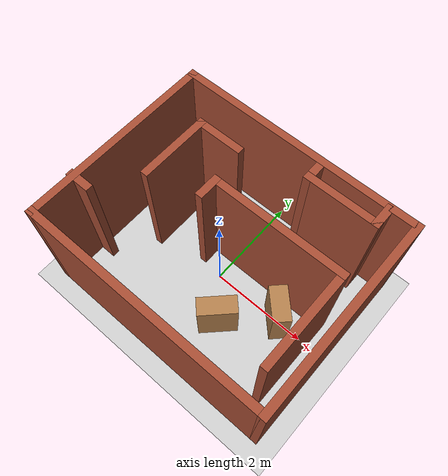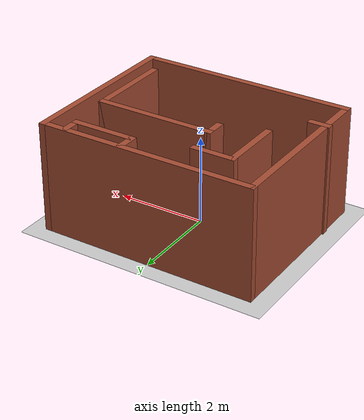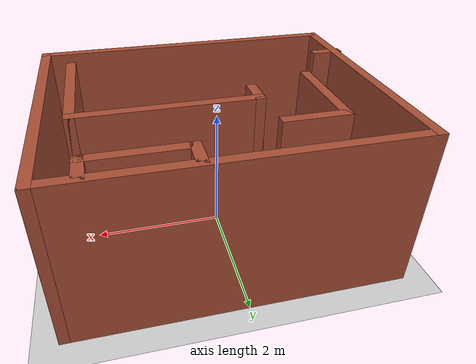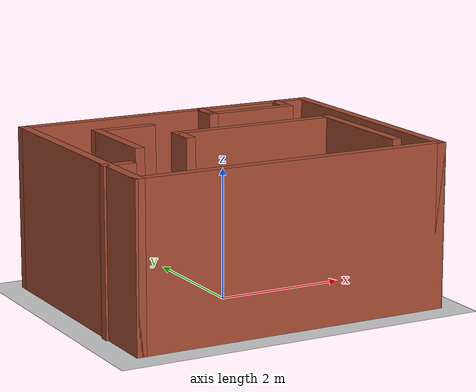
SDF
<sdf version="1.7">
 <world name="default">
  <light name="sun" type="directional">
   <pose>0 0 10 0 -0 0</pose>
   <diffuse>0.8 0.8 0.8 1</diffuse>
   <specular>0.2 0.2 0.2 1</specular>
   <attenuation>
    <range>1000</range>
    <constant>0.9</constant>
    <linear>0.01</linear>
    <quadratic>0.001</quadratic>
   </attenuation>
   <direction>-0.5 0.1 -0.9</direction>
   <spot><inner_angle>0</inner_angle><outer_angle>0</outer_angle><falloff>0</falloff></spot>
  </light>
  <model name="ground_plane">
   <static>1</static>
   <link name="link">
    <collision name="collision">
     <geometry><plane><normal>0 0 1</normal><size>100 100</size></plane></geometry>
     <surface>
      <contact><collide_bitmask>65535</collide_bitmask></contact>
      <friction><ode><mu>100</mu><mu2>50</mu2></ode></friction>
     </surface>
    </collision>
    <visual name="visual">
     <cast_shadows>0</cast_shadows>
     <geometry><plane><normal>0 0 1</normal><size>100 100</size></plane></geometry>
     <material>
      <script><uri>file://media/materials/scripts/gazebo.material</uri><name>Gazebo/Grey</name></script>
     </material>
    </visual>
   </link>
  </model>
  <gravity>0 0 -9.8</gravity>
  <magnetic_field>6e-06 2.3e-05 -4.2e-05</magnetic_field>
  <atmosphere type="adiabatic"/>
  <physics type="ode">
   <max_step_size>0.001</max_step_size>
   <real_time_factor>1</real_time_factor>
   <real_time_update_rate>1000</real_time_update_rate>
  </physics>
  <scene><ambient>0.4 0.4 0.4 1</ambient><background>0.7 0.7 0.7 1</background><shadows>1</shadows></scene>
  <spherical_coordinates>
   <surface_model>EARTH_WGS84</surface_model>
   <latitude_deg>0</latitude_deg>
   <longitude_deg>0</longitude_deg>
   <elevation>0</elevation>
   <heading_deg>0</heading_deg>
  </spherical_coordinates>
  <model name="world4">
   <pose>0.074225 1.73403 0 0 -0 0</pose>
   <link name="Wall_33">
    <collision name="Wall_33_Collision">
     <geometry><box><size>5 0.15 2.5</size></box></geometry>
     <pose>0 0 1.25 0 -0 0</pose>
    </collision>
    <visual name="Wall_33_Visual">
     <pose>0 0 1.25 0 -0 0</pose>
     <geometry><box><size>5 0.15 2.5</size></box></geometry>
     <material>
      <script><uri>file://media/materials/scripts/gazebo.material</uri><name>Gazebo/Bricks</name></script>
      <ambient>1 1 1 1</ambient>
     </material>
     <meta><layer>0</layer></meta>
    </visual>
    <pose>0.01749 -3.655 0 0 -0 0</pose>
   </link>
   <link name="Wall_34">
    <collision name="Wall_34_Collision">
     <geometry><box><size>4 0.15 2.5</size></box></geometry>
     <pose>0 0 1.25 0 -0 0</pose>
    </collision>
    <visual name="Wall_34_Visual">
     <pose>0 0 1.25 0 -0 0</pose>
     <geometry><box><size>4 0.15 2.5</size></box></geometry>
     <material>
      <script><uri>file://media/materials/scripts/gazebo.material</uri><name>Gazebo/Bricks</name></script>
      <ambient>1 1 1 1</ambient>
     </material>
     <meta><layer>0</layer></meta>
    </visual>
    <pose>2.44249 -1.73 0 0 -0 1.5708</pose>
   </link>
   <link name="Wall_35">
    <collision name="Wall_35_Collision">
     <geometry><box><size>5 0.15 2.5</size></box></geometry>
     <pose>0 0 1.25 0 -0 0</pose>
    </collision>
    <visual name="Wall_35_Visual">
     <pose>0 0 1.25 0 -0 0</pose>
     <geometry><box><size>5 0.15 2.5</size></box></geometry>
     <material>
      <script><uri>file://media/materials/scripts/gazebo.material</uri><name>Gazebo/Bricks</name></script>
      <ambient>1 1 1 1</ambient>
     </material>
     <meta><layer>0</layer></meta>
    </visual>
    <pose>0.01749 0.195001 0 0 -0 3.14159</pose>
   </link>
   <link name="Wall_36">
    <collision name="Wall_36_Collision">
     <geometry><box><size>4 0.15 2.5</size></box></geometry>
     <pose>0 0 1.25 0 -0 0</pose>
    </collision>
    <visual name="Wall_36_Visual">
     <pose>0 0 1.25 0 -0 0</pose>
     <geometry><box><size>4 0.15 2.5</size></box></geometry>
     <material>
      <script><uri>file://media/materials/scripts/gazebo.material</uri><name>Gazebo/Bricks</name></script>
      <ambient>1 1 1 1</ambient>
     </material>
     <meta><layer>0</layer></meta>
    </visual>
    <pose>-2.40751 -1.73 0 0 -0 -1.5708</pose>
   </link>
   <link name="Wall_43">
    <collision name="Wall_43_Collision">
     <geometry><box><size>0.5 0.15 2.5</size></box></geometry>
     <pose>0 0 1.25 0 -0 0</pose>
    </collision>
    <visual name="Wall_43_Visual">
     <pose>0 0 1.25 0 -0 0</pose>
     <geometry><box><size>0.5 0.15 2.5</size></box></geometry>
     <material>
      <script><uri>file://media/materials/scripts/gazebo.material</uri><name>Gazebo/Bricks</name></script>
      <ambient>1 1 1 1</ambient>
     </material>
     <meta><layer>0</layer></meta>
    </visual>
    <pose>1.91254 -0.017165 0 0 -0 -1.5708</pose>
   </link>
   <link name="Wall_44">
    <collision name="Wall_44_Collision">
     <geometry><box><size>1.5 0.15 2.5</size></box></geometry>
     <pose>0 0 1.25 0 -0 0</pose>
    </collision>
    <visual name="Wall_44_Visual">
     <pose>0 0 1.25 0 -0 0</pose>
     <geometry><box><size>1.5 0.15 2.5</size></box></geometry>
     <material>
      <script><uri>file://media/materials/scripts/gazebo.material</uri><name>Gazebo/Bricks</name></script>
      <ambient>1 1 1 1</ambient>
     </material>
     <meta><layer>0</layer></meta>
    </visual>
    <pose>1.23754 -0.192166 0 0 -0 3.14159</pose>
   </link>
   <link name="Wall_45">
    <collision name="Wall_45_Collision">
     <geometry><box><size>0.5 0.15 2.5</size></box></geometry>
     <pose>0 0 1.25 0 -0 0</pose>
    </collision>
    <visual name="Wall_45_Visual">
     <pose>0 0 1.25 0 -0 0</pose>
     <geometry><box><size>0.5 0.15 2.5</size></box></geometry>
     <material>
      <script><uri>file://media/materials/scripts/gazebo.material</uri><name>Gazebo/Bricks</name></script>
      <ambient>1 1 1 1</ambient>
     </material>
     <meta><layer>0</layer></meta>
    </visual>
    <pose>0.562535 -0.017165 0 0 -0 1.5708</pose>
   </link>
   <link name="Wall_47">
    <collision name="Wall_47_Collision">
     <geometry><box><size>0.5 0.15 2.5</size></box></geometry>
     <pose>0 0 1.25 0 -0 0</pose>
    </collision>
    <visual name="Wall_47_Visual">
     <pose>0 0 1.25 0 -0 0</pose>
     <geometry><box><size>0.5 0.15 2.5</size></box></geometry>
     <material>
      <script><uri>file://media/materials/scripts/gazebo.material</uri><name>Gazebo/Bricks</name></script>
      <ambient>1 1 1 1</ambient>
     </material>
     <meta><layer>0</layer></meta>
    </visual>
    <pose>-2.26749 -2.74552 0 0 -0 0</pose>
   </link>
   <link name="Wall_49">
    <collision name="Wall_49_Collision">
     <geometry><box><size>1 0.15 2.5</size></box></geometry>
     <pose>0 0 1.25 0 -0 0</pose>
    </collision>
    <visual name="Wall_49_Visual">
     <pose>0 0 1.25 0 -0 0</pose>
     <geometry><box><size>1 0.15 2.5</size></box></geometry>
     <material>
      <script><uri>file://media/materials/scripts/gazebo.material</uri><name>Gazebo/Bricks</name></script>
      <ambient>1 1 1 1</ambient>
     </material>
     <meta><layer>0</layer></meta>
    </visual>
    <pose>-1.11848 -0.541768 0 0 -0 3.14159</pose>
   </link>
   <link name="Wall_50">
    <collision name="Wall_50_Collision">
     <geometry><box><size>1.5 0.15 2.5</size></box></geometry>
     <pose>0 0 1.25 0 -0 0</pose>
    </collision>
    <visual name="Wall_50_Visual">
     <pose>0 0 1.25 0 -0 0</pose>
     <geometry><box><size>1.5 0.15 2.5</size></box></geometry>
     <material>
      <script><uri>file://media/materials/scripts/gazebo.material</uri><name>Gazebo/Bricks</name></script>
      <ambient>1 1 1 1</ambient>
     </material>
     <meta><layer>0</layer></meta>
    </visual>
    <pose>-1.54348 -1.21677 0 0 -0 -1.5708</pose>
   </link>
   <link name="Wall_52">
    <collision name="Wall_52_Collision">
     <geometry><box><size>0.5 0.15 2.5</size></box></geometry>
     <pose>0 0 1.25 0 -0 0</pose>
    </collision>
    <visual name="Wall_52_Visual">
     <pose>0 0 1.25 0 -0 0</pose>
     <geometry><box><size>0.5 0.15 2.5</size></box></geometry>
     <material>
      <script><uri>file://media/materials/scripts/gazebo.material</uri><name>Gazebo/Bricks</name></script>
      <ambient>1 1 1 1</ambient>
     </material>
     <meta><layer>0</layer></meta>
    </visual>
    <pose>-0.571053 -1.43366 0 0 -0 1.5708</pose>
   </link>
   <link name="Wall_53">
    <collision name="Wall_53_Collision">
     <geometry><box><size>2.75 0.15 2.5</size></box></geometry>
     <pose>0 0 1.25 0 -0 0</pose>
    </collision>
    <visual name="Wall_53_Visual">
     <pose>0 0 1.25 0 -0 0</pose>
     <geometry><box><size>2.75 0.15 2.5</size></box></geometry>
     <material>
      <script><uri>file://media/materials/scripts/gazebo.material</uri><name>Gazebo/Bricks</name></script>
      <ambient>1 1 1 1</ambient>
     </material>
     <meta><layer>0</layer></meta>
    </visual>
    <pose>0.728947 -1.25866 0 0 -0 0</pose>
   </link>
   <link name="Wall_54">
    <collision name="Wall_54_Collision">
     <geometry><box><size>2 0.15 2.5</size></box></geometry>
     <pose>0 0 1.25 0 -0 0</pose>
    </collision>
    <visual name="Wall_54_Visual">
     <pose>0 0 1.25 0 -0 0</pose>
     <geometry><box><size>2 0.15 2.5</size></box></geometry>
     <material>
      <script><uri>file://media/materials/scripts/gazebo.material</uri><name>Gazebo/Bricks</name></script>
      <ambient>1 1 1 1</ambient>
     </material>
     <meta><layer>0</layer></meta>
    </visual>
    <pose>2.02895 -2.18366 0 0 -0 -1.5708</pose>
   </link>
   <link name="Wall_56">
    <collision name="Wall_56_Collision">
     <geometry><box><size>0.699717 0.35 1</size></box></geometry>
     <pose>0 0 0.5 0 -0 0</pose>
    </collision>
    <visual name="Wall_56_Visual">
     <pose>0 0 0.5 0 -0 0</pose>
     <geometry><box><size>0.699717 0.35 1</size></box></geometry>
     <material>
      <script><uri>file://media/materials/scripts/gazebo.material</uri><name>Gazebo/Wood</name></script>
      <ambient>1 1 1 1</ambient>
     </material>
     <meta><layer>0</layer></meta>
    </visual>
    <pose>1.35398 -1.7325 0 0 -0 -0.785398</pose>
   </link>
   <link name="Wall_58">
    <collision name="Wall_58_Collision">
     <geometry><box><size>0.75 0.35 1</size></box></geometry>
     <pose>0 0 0.5 0 -0 0</pose>
    </collision>
    <visual name="Wall_58_Visual">
     <pose>0 0 0.5 0 -0 0</pose>
     <geometry><box><size>0.75 0.35 1</size></box></geometry>
     <material>
      <script><uri>file://media/materials/scripts/gazebo.material</uri><name>Gazebo/Wood</name></script>
      <ambient>1 1 1 1</ambient>
     </material>
     <meta><layer>0</layer></meta>
    </visual>
    <pose>0.532435 -2.49891 0 0 -0 0.785398</pose>
   </link>
   <static>1</static>
  </model>
 </world>
</sdf>
